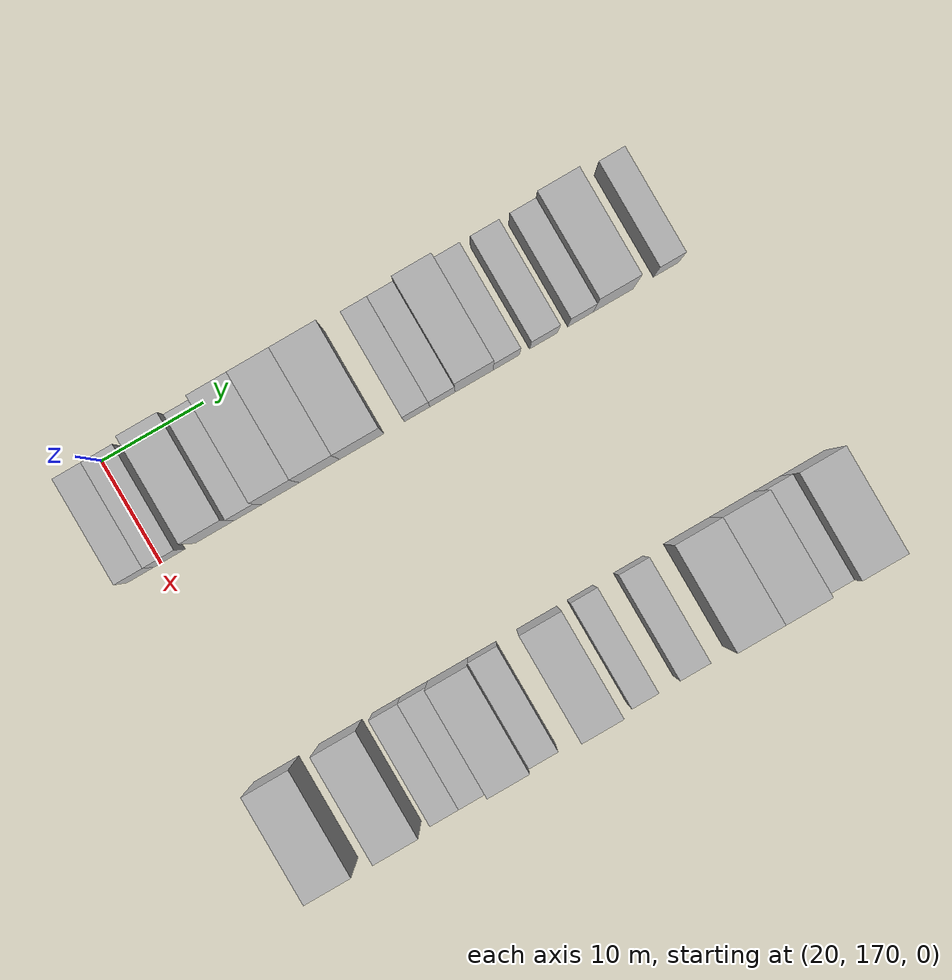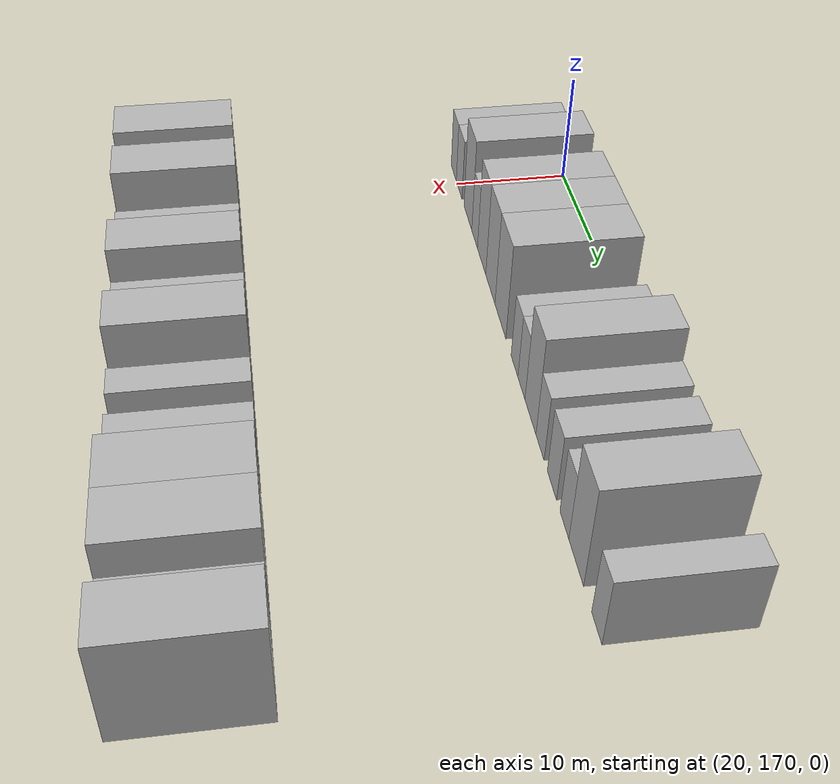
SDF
<sdf version="1.6">
 <world name="default">
  <model name="building_96">
   <static>1</static>
   <pose>25.0000 168.0910 0 0.000000 0.000000 0.000000</pose>
   <link name="link">
    <pose>0 0 3.00 0 0 0</pose>
    <collision name="collision"><geometry><box><size>10.0000 2.7019 6.0000</size></box></geometry></collision>
    <visual name="visual">
     <cast_shadows>0</cast_shadows>
     <geometry><box><size>10.0000 2.7019 6.0000</size></box></geometry>
     <material>
      <script>
       <uri>model://HANNAS_wall/materials/scripts</uri>
       <uri>model://HANNAS_wall/materials/textures</uri>
       <name>vrc/HANNAS_wall</name>
      </script>
     </material>
    </visual>
   </link>
  </model>
  <model name="building_97">
   <static>1</static>
   <pose>25.0000 170.9307 0 0.000000 0.000000 0.000000</pose>
   <link name="link">
    <pose>0 0 3.00 0 0 0</pose>
    <collision name="collision"><geometry><box><size>10.0000 2.9776 6.0000</size></box></geometry></collision>
    <visual name="visual">
     <cast_shadows>0</cast_shadows>
     <geometry><box><size>10.0000 2.9776 6.0000</size></box></geometry>
     <material>
      <script>
       <uri>model://HANNAS_wall/materials/scripts</uri>
       <uri>model://HANNAS_wall/materials/textures</uri>
       <name>vrc/HANNAS_wall</name>
      </script>
     </material>
    </visual>
   </link>
  </model>
  <model name="building_98">
   <static>1</static>
   <pose>25.0000 175.3332 0 0.000000 0.000000 0.000000</pose>
   <link name="link">
    <pose>0 0 4.50 0 0 0</pose>
    <collision name="collision"><geometry><box><size>10.0000 3.8273 9.0000</size></box></geometry></collision>
    <visual name="visual">
     <cast_shadows>0</cast_shadows>
     <geometry><box><size>10.0000 3.8273 9.0000</size></box></geometry>
     <material>
      <script>
       <uri>model://HANNAS_wall/materials/scripts</uri>
       <uri>model://HANNAS_wall/materials/textures</uri>
       <name>vrc/HANNAS_wall</name>
      </script>
     </material>
    </visual>
   </link>
  </model>
  <model name="building_99">
   <static>1</static>
   <pose>25.0000 178.5774 0 0.000000 0.000000 0.000000</pose>
   <link name="link">
    <pose>0 0 3.00 0 0 0</pose>
    <collision name="collision"><geometry><box><size>10.0000 2.6610 6.0000</size></box></geometry></collision>
    <visual name="visual">
     <cast_shadows>0</cast_shadows>
     <geometry><box><size>10.0000 2.6610 6.0000</size></box></geometry>
     <material>
      <script>
       <uri>model://HANNAS_wall/materials/scripts</uri>
       <uri>model://HANNAS_wall/materials/textures</uri>
       <name>vrc/HANNAS_wall</name>
      </script>
     </material>
    </visual>
   </link>
  </model>
  <model name="building_100">
   <static>1</static>
   <pose>25.0000 181.7789 0 0.000000 0.000000 0.000000</pose>
   <link name="link">
    <pose>0 0 4.50 0 0 0</pose>
    <collision name="collision"><geometry><box><size>10.0000 3.7421 9.0000</size></box></geometry></collision>
    <visual name="visual">
     <cast_shadows>0</cast_shadows>
     <geometry><box><size>10.0000 3.7421 9.0000</size></box></geometry>
     <material>
      <script>
       <uri>model://HANNAS_wall/materials/scripts</uri>
       <uri>model://HANNAS_wall/materials/textures</uri>
       <name>vrc/HANNAS_wall</name>
      </script>
     </material>
    </visual>
   </link>
  </model>
  <model name="building_101">
   <static>1</static>
   <pose>25.0000 185.6062 0 0.000000 0.000000 0.000000</pose>
   <link name="link">
    <pose>0 0 4.50 0 0 0</pose>
    <collision name="collision"><geometry><box><size>10.0000 3.9123 9.0000</size></box></geometry></collision>
    <visual name="visual">
     <cast_shadows>0</cast_shadows>
     <geometry><box><size>10.0000 3.9123 9.0000</size></box></geometry>
     <material>
      <script>
       <uri>model://HANNAS_wall/materials/scripts</uri>
       <uri>model://HANNAS_wall/materials/textures</uri>
       <name>vrc/HANNAS_wall</name>
      </script>
     </material>
    </visual>
   </link>
  </model>
  <model name="building_102">
   <static>1</static>
   <pose>25.0000 189.7421 0 0.000000 0.000000 0.000000</pose>
   <link name="link">
    <pose>0 0 4.50 0 0 0</pose>
    <collision name="collision"><geometry><box><size>10.0000 4.3595 9.0000</size></box></geometry></collision>
    <visual name="visual">
     <cast_shadows>0</cast_shadows>
     <geometry><box><size>10.0000 4.3595 9.0000</size></box></geometry>
     <material>
      <script>
       <uri>model://HANNAS_wall/materials/scripts</uri>
       <uri>model://HANNAS_wall/materials/textures</uri>
       <name>vrc/HANNAS_wall</name>
      </script>
     </material>
    </visual>
   </link>
  </model>
  <model name="building_103">
   <static>1</static>
   <pose>25.0000 195.1657 0 0.000000 0.000000 0.000000</pose>
   <link name="link">
    <pose>0 0 3.00 0 0 0</pose>
    <collision name="collision"><geometry><box><size>10.0000 2.4878 6.0000</size></box></geometry></collision>
    <visual name="visual">
     <cast_shadows>0</cast_shadows>
     <geometry><box><size>10.0000 2.4878 6.0000</size></box></geometry>
     <material>
      <script>
       <uri>model://HANNAS_wall/materials/scripts</uri>
       <uri>model://HANNAS_wall/materials/textures</uri>
       <name>vrc/HANNAS_wall</name>
      </script>
     </material>
    </visual>
   </link>
  </model>
  <model name="building_104">
   <static>1</static>
   <pose>25.0000 197.6542 0 0.000000 0.000000 0.000000</pose>
   <link name="link">
    <pose>0 0 3.00 0 0 0</pose>
    <collision name="collision"><geometry><box><size>10.0000 2.4891 6.0000</size></box></geometry></collision>
    <visual name="visual">
     <cast_shadows>0</cast_shadows>
     <geometry><box><size>10.0000 2.4891 6.0000</size></box></geometry>
     <material>
      <script>
       <uri>model://HANNAS_wall/materials/scripts</uri>
       <uri>model://HANNAS_wall/materials/textures</uri>
       <name>vrc/HANNAS_wall</name>
      </script>
     </material>
    </visual>
   </link>
  </model>
  <model name="building_105">
   <static>1</static>
   <pose>25.0000 200.7503 0 0.000000 0.000000 0.000000</pose>
   <link name="link">
    <pose>0 0 4.50 0 0 0</pose>
    <collision name="collision"><geometry><box><size>10.0000 3.7031 9.0000</size></box></geometry></collision>
    <visual name="visual">
     <cast_shadows>0</cast_shadows>
     <geometry><box><size>10.0000 3.7031 9.0000</size></box></geometry>
     <material>
      <script>
       <uri>model://HANNAS_wall/materials/scripts</uri>
       <uri>model://HANNAS_wall/materials/textures</uri>
       <name>vrc/HANNAS_wall</name>
      </script>
     </material>
    </visual>
   </link>
  </model>
  <model name="building_106">
   <static>1</static>
   <pose>25.0000 203.8945 0 0.000000 0.000000 0.000000</pose>
   <link name="link">
    <pose>0 0 3.00 0 0 0</pose>
    <collision name="collision"><geometry><box><size>10.0000 2.5854 6.0000</size></box></geometry></collision>
    <visual name="visual">
     <cast_shadows>0</cast_shadows>
     <geometry><box><size>10.0000 2.5854 6.0000</size></box></geometry>
     <material>
      <script>
       <uri>model://HANNAS_wall/materials/scripts</uri>
       <uri>model://HANNAS_wall/materials/textures</uri>
       <name>vrc/HANNAS_wall</name>
      </script>
     </material>
    </visual>
   </link>
  </model>
  <model name="building_107">
   <static>1</static>
   <pose>25.0000 207.5575 0 0.000000 0.000000 0.000000</pose>
   <link name="link">
    <pose>0 0 3.00 0 0 0</pose>
    <collision name="collision"><geometry><box><size>10.0000 2.7405 6.0000</size></box></geometry></collision>
    <visual name="visual">
     <cast_shadows>0</cast_shadows>
     <geometry><box><size>10.0000 2.7405 6.0000</size></box></geometry>
     <material>
      <script>
       <uri>model://HANNAS_wall/materials/scripts</uri>
       <uri>model://HANNAS_wall/materials/textures</uri>
       <name>vrc/HANNAS_wall</name>
      </script>
     </material>
    </visual>
   </link>
  </model>
  <model name="building_108">
   <static>1</static>
   <pose>25.0000 211.1710 0 0.000000 0.000000 0.000000</pose>
   <link name="link">
    <pose>0 0 3.00 0 0 0</pose>
    <collision name="collision"><geometry><box><size>10.0000 2.4865 6.0000</size></box></geometry></collision>
    <visual name="visual">
     <cast_shadows>0</cast_shadows>
     <geometry><box><size>10.0000 2.4865 6.0000</size></box></geometry>
     <material>
      <script>
       <uri>model://HANNAS_wall/materials/scripts</uri>
       <uri>model://HANNAS_wall/materials/textures</uri>
       <name>vrc/HANNAS_wall</name>
      </script>
     </material>
    </visual>
   </link>
  </model>
  <model name="building_109">
   <static>1</static>
   <pose>25.0000 214.3712 0 0.000000 0.000000 0.000000</pose>
   <link name="link">
    <pose>0 0 4.50 0 0 0</pose>
    <collision name="collision"><geometry><box><size>10.0000 3.9139 9.0000</size></box></geometry></collision>
    <visual name="visual">
     <cast_shadows>0</cast_shadows>
     <geometry><box><size>10.0000 3.9139 9.0000</size></box></geometry>
     <material>
      <script>
       <uri>model://HANNAS_wall/materials/scripts</uri>
       <uri>model://HANNAS_wall/materials/textures</uri>
       <name>vrc/HANNAS_wall</name>
      </script>
     </material>
    </visual>
   </link>
  </model>
  <model name="building_110">
   <static>1</static>
   <pose>25.0000 219.5664 0 0.000000 0.000000 0.000000</pose>
   <link name="link">
    <pose>0 0 3.00 0 0 0</pose>
    <collision name="collision"><geometry><box><size>10.0000 2.4767 6.0000</size></box></geometry></collision>
    <visual name="visual">
     <cast_shadows>0</cast_shadows>
     <geometry><box><size>10.0000 2.4767 6.0000</size></box></geometry>
     <material>
      <script>
       <uri>model://HANNAS_wall/materials/scripts</uri>
       <uri>model://HANNAS_wall/materials/textures</uri>
       <name>vrc/HANNAS_wall</name>
      </script>
     </material>
    </visual>
   </link>
  </model>
  <model name="building_207">
   <static>1</static>
   <pose>55.0000 169.7462 0 0.000000 0.000000 0.000000</pose>
   <link name="link">
    <pose>0 0 4.50 0 0 0</pose>
    <collision name="collision"><geometry><box><size>10.0000 4.3857 9.0000</size></box></geometry></collision>
    <visual name="visual">
     <cast_shadows>0</cast_shadows>
     <geometry><box><size>10.0000 4.3857 9.0000</size></box></geometry>
     <material>
      <script>
       <uri>model://HANNAS_wall/materials/scripts</uri>
       <uri>model://HANNAS_wall/materials/textures</uri>
       <name>vrc/HANNAS_wall</name>
      </script>
     </material>
    </visual>
   </link>
  </model>
  <model name="building_208">
   <static>1</static>
   <pose>55.0000 176.0405 0 0.000000 0.000000 0.000000</pose>
   <link name="link">
    <pose>0 0 4.50 0 0 0</pose>
    <collision name="collision"><geometry><box><size>10.0000 4.2028 9.0000</size></box></geometry></collision>
    <visual name="visual">
     <cast_shadows>0</cast_shadows>
     <geometry><box><size>10.0000 4.2028 9.0000</size></box></geometry>
     <material>
      <script>
       <uri>model://HANNAS_wall/materials/scripts</uri>
       <uri>model://HANNAS_wall/materials/textures</uri>
       <name>vrc/HANNAS_wall</name>
      </script>
     </material>
    </visual>
   </link>
  </model>
  <model name="building_209">
   <static>1</static>
   <pose>55.0000 180.4983 0 0.000000 0.000000 0.000000</pose>
   <link name="link">
    <pose>0 0 3.00 0 0 0</pose>
    <collision name="collision"><geometry><box><size>10.0000 2.7128 6.0000</size></box></geometry></collision>
    <visual name="visual">
     <cast_shadows>0</cast_shadows>
     <geometry><box><size>10.0000 2.7128 6.0000</size></box></geometry>
     <material>
      <script>
       <uri>model://HANNAS_wall/materials/scripts</uri>
       <uri>model://HANNAS_wall/materials/textures</uri>
       <name>vrc/HANNAS_wall</name>
      </script>
     </material>
    </visual>
   </link>
  </model>
  <model name="building_210">
   <static>1</static>
   <pose>55.0000 183.1916 0 0.000000 0.000000 0.000000</pose>
   <link name="link">
    <pose>0 0 3.00 0 0 0</pose>
    <collision name="collision"><geometry><box><size>10.0000 2.6739 6.0000</size></box></geometry></collision>
    <visual name="visual">
     <cast_shadows>0</cast_shadows>
     <geometry><box><size>10.0000 2.6739 6.0000</size></box></geometry>
     <material>
      <script>
       <uri>model://HANNAS_wall/materials/scripts</uri>
       <uri>model://HANNAS_wall/materials/textures</uri>
       <name>vrc/HANNAS_wall</name>
      </script>
     </material>
    </visual>
   </link>
  </model>
  <model name="building_211">
   <static>1</static>
   <pose>55.0000 186.5033 0 0.000000 0.000000 0.000000</pose>
   <link name="link">
    <pose>0 0 4.50 0 0 0</pose>
    <collision name="collision"><geometry><box><size>10.0000 3.9493 9.0000</size></box></geometry></collision>
    <visual name="visual">
     <cast_shadows>0</cast_shadows>
     <geometry><box><size>10.0000 3.9493 9.0000</size></box></geometry>
     <material>
      <script>
       <uri>model://HANNAS_wall/materials/scripts</uri>
       <uri>model://HANNAS_wall/materials/textures</uri>
       <name>vrc/HANNAS_wall</name>
      </script>
     </material>
    </visual>
   </link>
  </model>
  <model name="building_212">
   <static>1</static>
   <pose>55.0000 189.8732 0 0.000000 0.000000 0.000000</pose>
   <link name="link">
    <pose>0 0 3.00 0 0 0</pose>
    <collision name="collision"><geometry><box><size>10.0000 2.7906 6.0000</size></box></geometry></collision>
    <visual name="visual">
     <cast_shadows>0</cast_shadows>
     <geometry><box><size>10.0000 2.7906 6.0000</size></box></geometry>
     <material>
      <script>
       <uri>model://HANNAS_wall/materials/scripts</uri>
       <uri>model://HANNAS_wall/materials/textures</uri>
       <name>vrc/HANNAS_wall</name>
      </script>
     </material>
    </visual>
   </link>
  </model>
  <model name="building_213">
   <static>1</static>
   <pose>55.0000 195.2418 0 0.000000 0.000000 0.000000</pose>
   <link name="link">
    <pose>0 0 4.50 0 0 0</pose>
    <collision name="collision"><geometry><box><size>10.0000 3.9464 9.0000</size></box></geometry></collision>
    <visual name="visual">
     <cast_shadows>0</cast_shadows>
     <geometry><box><size>10.0000 3.9464 9.0000</size></box></geometry>
     <material>
      <script>
       <uri>model://HANNAS_wall/materials/scripts</uri>
       <uri>model://HANNAS_wall/materials/textures</uri>
       <name>vrc/HANNAS_wall</name>
      </script>
     </material>
    </visual>
   </link>
  </model>
  <model name="building_214">
   <static>1</static>
   <pose>55.0000 199.4950 0 0.000000 0.000000 0.000000</pose>
   <link name="link">
    <pose>0 0 3.00 0 0 0</pose>
    <collision name="collision"><geometry><box><size>10.0000 2.5600 6.0000</size></box></geometry></collision>
    <visual name="visual">
     <cast_shadows>0</cast_shadows>
     <geometry><box><size>10.0000 2.5600 6.0000</size></box></geometry>
     <material>
      <script>
       <uri>model://HANNAS_wall/materials/scripts</uri>
       <uri>model://HANNAS_wall/materials/textures</uri>
       <name>vrc/HANNAS_wall</name>
      </script>
     </material>
    </visual>
   </link>
  </model>
  <model name="building_215">
   <static>1</static>
   <pose>55.0000 204.2309 0 0.000000 0.000000 0.000000</pose>
   <link name="link">
    <pose>0 0 3.00 0 0 0</pose>
    <collision name="collision"><geometry><box><size>10.0000 2.9119 6.0000</size></box></geometry></collision>
    <visual name="visual">
     <cast_shadows>0</cast_shadows>
     <geometry><box><size>10.0000 2.9119 6.0000</size></box></geometry>
     <material>
      <script>
       <uri>model://HANNAS_wall/materials/scripts</uri>
       <uri>model://HANNAS_wall/materials/textures</uri>
       <name>vrc/HANNAS_wall</name>
      </script>
     </material>
    </visual>
   </link>
  </model>
  <model name="building_216">
   <static>1</static>
   <pose>55.0000 209.9229 0 0.000000 0.000000 0.000000</pose>
   <link name="link">
    <pose>0 0 4.50 0 0 0</pose>
    <collision name="collision"><geometry><box><size>10.0000 4.4722 9.0000</size></box></geometry></collision>
    <visual name="visual">
     <cast_shadows>0</cast_shadows>
     <geometry><box><size>10.0000 4.4722 9.0000</size></box></geometry>
     <material>
      <script>
       <uri>model://HANNAS_wall/materials/scripts</uri>
       <uri>model://HANNAS_wall/materials/textures</uri>
       <name>vrc/HANNAS_wall</name>
      </script>
     </material>
    </visual>
   </link>
  </model>
  <model name="building_217">
   <static>1</static>
   <pose>55.0000 214.3571 0 0.000000 0.000000 0.000000</pose>
   <link name="link">
    <pose>0 0 4.50 0 0 0</pose>
    <collision name="collision"><geometry><box><size>10.0000 4.3961 9.0000</size></box></geometry></collision>
    <visual name="visual">
     <cast_shadows>0</cast_shadows>
     <geometry><box><size>10.0000 4.3961 9.0000</size></box></geometry>
     <material>
      <script>
       <uri>model://HANNAS_wall/materials/scripts</uri>
       <uri>model://HANNAS_wall/materials/textures</uri>
       <name>vrc/HANNAS_wall</name>
      </script>
     </material>
    </visual>
   </link>
  </model>
  <model name="building_218">
   <static>1</static>
   <pose>55.0000 217.8806 0 0.000000 0.000000 0.000000</pose>
   <link name="link">
    <pose>0 0 3.00 0 0 0</pose>
    <collision name="collision"><geometry><box><size>10.0000 2.6509 6.0000</size></box></geometry></collision>
    <visual name="visual">
     <cast_shadows>0</cast_shadows>
     <geometry><box><size>10.0000 2.6509 6.0000</size></box></geometry>
     <material>
      <script>
       <uri>model://HANNAS_wall/materials/scripts</uri>
       <uri>model://HANNAS_wall/materials/textures</uri>
       <name>vrc/HANNAS_wall</name>
      </script>
     </material>
    </visual>
   </link>
  </model>
  <model name="building_219">
   <static>1</static>
   <pose>55.0000 221.3788 0 0.000000 0.000000 0.000000</pose>
   <link name="link">
    <pose>0 0 4.50 0 0 0</pose>
    <collision name="collision"><geometry><box><size>10.0000 4.3455 9.0000</size></box></geometry></collision>
    <visual name="visual">
     <cast_shadows>0</cast_shadows>
     <geometry><box><size>10.0000 4.3455 9.0000</size></box></geometry>
     <material>
      <script>
       <uri>model://HANNAS_wall/materials/scripts</uri>
       <uri>model://HANNAS_wall/materials/textures</uri>
       <name>vrc/HANNAS_wall</name>
      </script>
     </material>
    </visual>
   </link>
  </model>
 </world>
</sdf>
